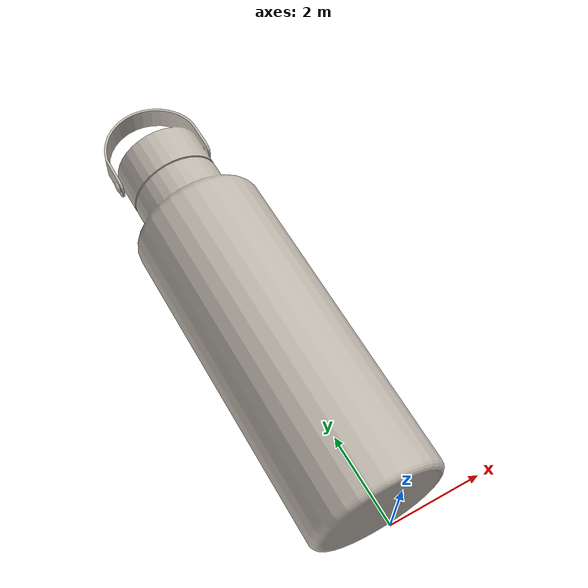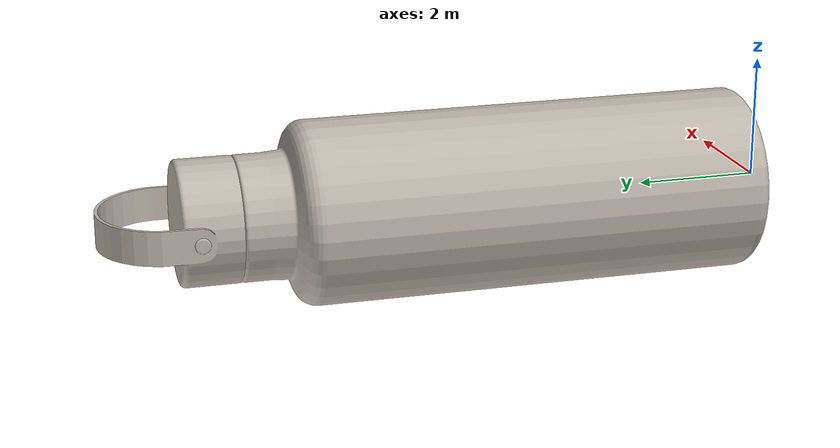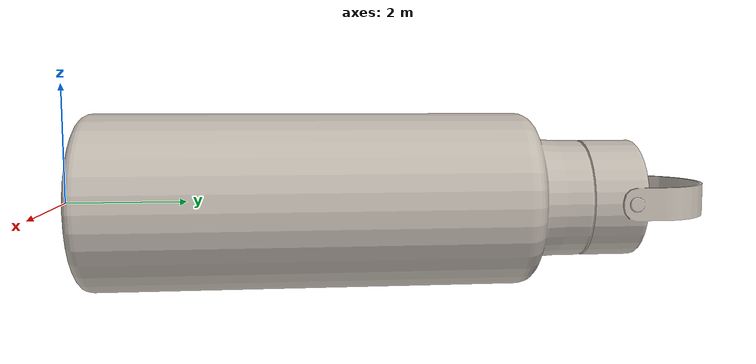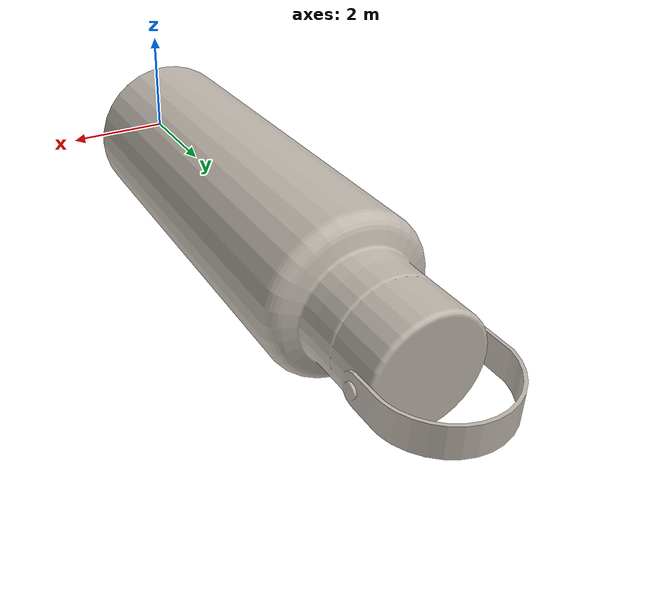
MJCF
<mujoco model="mug_1">
  <asset>
    <mesh file="meshes/water_bottle.glb" name="mug_mesh" scale="1.5 1.5 1.5"/>
    <texture type="2d" file="../textures/ceramic.png" name="tex-ceramic"/>
    <material name="ceramic" reflectance="0.3" texrepeat="3 3" texture="tex-ceramic" texuniform="true"/>
  </asset>
  <worldbody>
    <body>
      <body name="object">
        <geom pos="0 0 0" mesh="mug_mesh" type="mesh" solimp="0.998 0.998 0.001" solref="0.001 1" density="100" friction="0.95 0.3 0.1" material="ceramic" contype="0" conaffinity="0" group="1"/>
        <geom pos="0 0 0" mesh="mug_mesh" type="mesh" solimp="0.998 0.998 0.001" solref="0.001 1" density="100" friction="0.95 0.3 0.1" material="ceramic" group="0"/>
      </body>
      <site rgba="0 0 0 0" size="0.005" pos="0 0 0" name="bottom_site"/>
      <site rgba="0 0 0 0" size="0.005" pos="0 0.00 0.06" name="top_site"/>
      <site rgba="0 0 0 0" size="0.005" pos="0.048 0.051 0" name="horizontal_radius_site"/>
    </body>
  </worldbody>
</mujoco>
